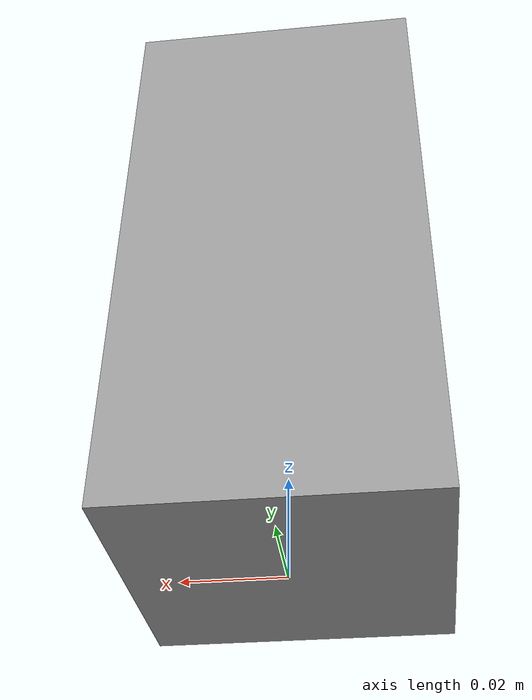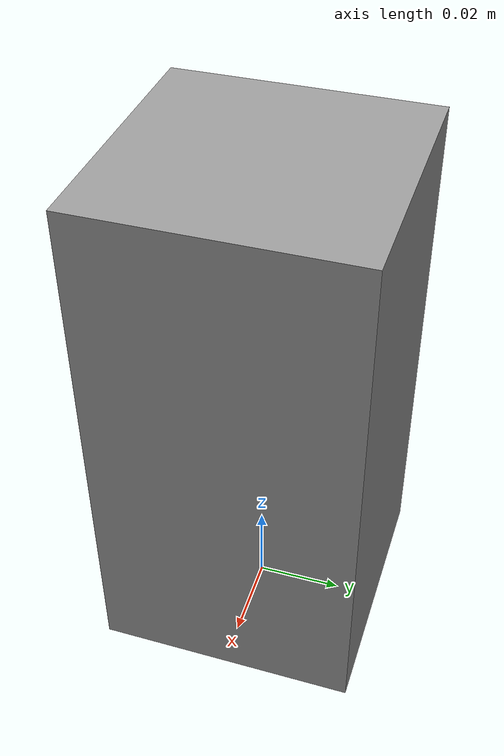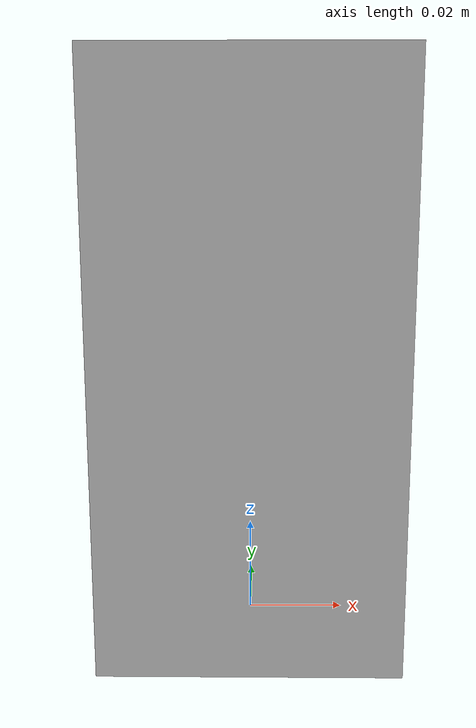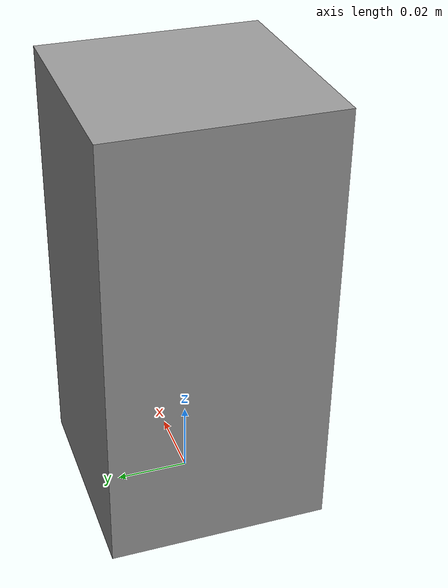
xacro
<?xml version="1.0"?>
<robot name="rg6_gripper" xmlns:xacro="http://ros.org/wiki/xacro">
  <link name="rg6_base_link">
    <visual>
      <geometry>
        <box size="0.06 0.06 0.12"/>
      </geometry>
      <origin xyz="0 0 0.06" rpy="0 0 0"/>
      <material name="gray">
        <color rgba="0.6 0.6 0.6 1"/>
      </material>
    </visual>
  </link>
</robot>
